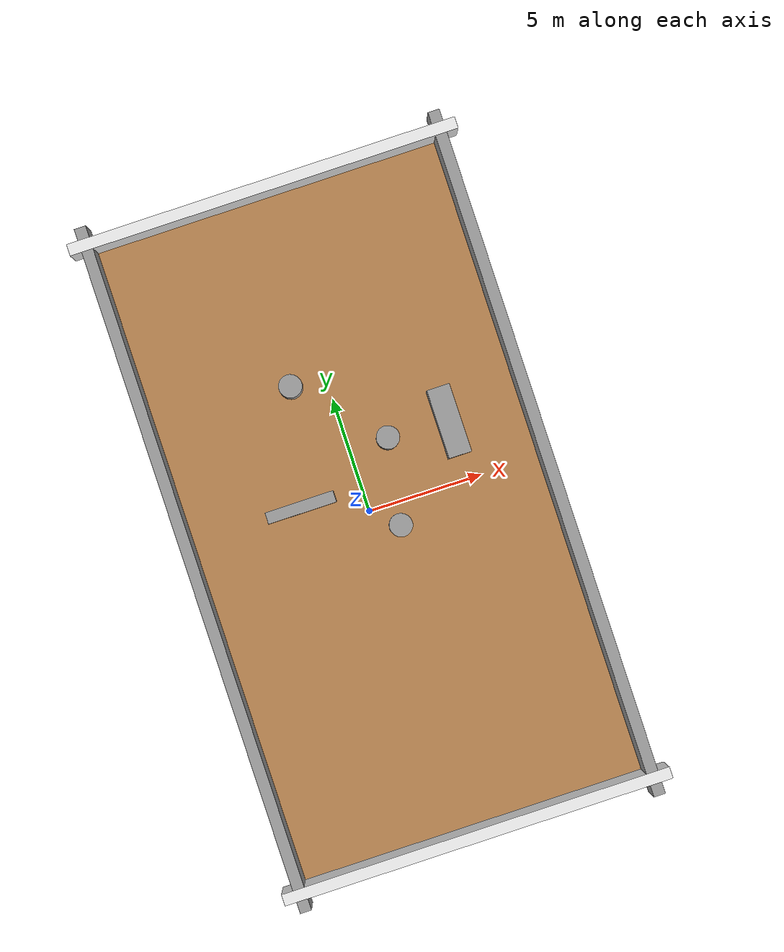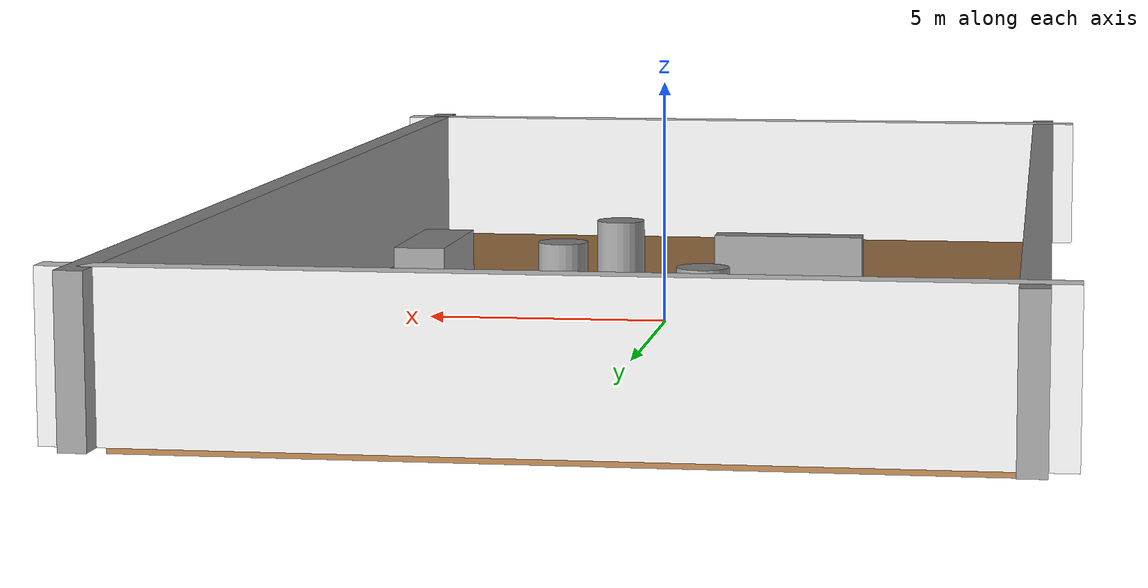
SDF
<sdf version="1.6">
  <model name='base'>
    <model name='unit_cylinder'>
      <pose frame=''>1.6974 2.70537 1 0 -0 0</pose>
      <static>true</static>
      <link name='link'>
        <inertial>
          <mass>1</mass>
          <inertia>
            <ixx>0.145833</ixx>
            <ixy>0</ixy>
            <ixz>0</ixz>
            <iyy>0.145833</iyy>
            <iyz>0</iyz>
            <izz>0.125</izz>
          </inertia>
        </inertial>
        <collision name='collision'>
          <geometry>
            <cylinder>
              <radius>0.5</radius>
              <length>2</length>
            </cylinder>
          </geometry>
          <max_contacts>10</max_contacts>
          <surface>
            <contact>
              <ode/>
            </contact>
            <bounce/>
            <friction>
              <torsional>
                <ode/>
              </torsional>
              <ode/>
            </friction>
          </surface>
        </collision>
        <visual name='visual'>
          <geometry>
            <cylinder>
              <radius>0.5</radius>
              <length>2</length>
            </cylinder>
          </geometry>
          <material>
            <script>
              <name>Gazebo/Grey</name>
              <uri>file://media/materials/scripts/gazebo.material</uri>
            </script>
          </material>
        </visual>
        <self_collide>0</self_collide>
        <kinematic>0</kinematic>
      </link>
    </model>
    <model name='unit_box'>
      <pose frame=''>-2.69557 1.06476 1 0 -0 0</pose>
      <static>true</static>
      <link name='link'>
        <inertial>
          <mass>1</mass>
          <inertia>
            <ixx>0.166667</ixx>
            <ixy>0</ixy>
            <ixz>0</ixz>
            <iyy>0.166667</iyy>
            <iyz>0</iyz>
            <izz>0.166667</izz>
          </inertia>
        </inertial>
        <collision name='collision'>
          <geometry>
            <box>
              <size>3 0.5 2</size>
            </box>
          </geometry>
          <max_contacts>10</max_contacts>
          <surface>
            <contact>
              <ode/>
            </contact>
            <bounce/>
            <friction>
              <torsional>
                <ode/>
              </torsional>
              <ode/>
            </friction>
          </surface>
        </collision>
        <visual name='visual'>
          <geometry>
            <box>
              <size>3 0.5 2</size>
            </box>
          </geometry>
          <material>
            <script>
              <name>Gazebo/Grey</name>
              <uri>file://media/materials/scripts/gazebo.material</uri>
            </script>
          </material>
        </visual>
        <self_collide>0</self_collide>
        <kinematic>0</kinematic>
      </link>
    </model>
    <model name='unit_cylinder_0'>
      <pose frame=''>-1.51424 6.02496 1 0 -0 0</pose>
      <static>true</static>
      <link name='link'>
        <inertial>
          <mass>1</mass>
          <inertia>
            <ixx>0.145833</ixx>
            <ixy>0</ixy>
            <ixz>0</ixz>
            <iyy>0.145833</iyy>
            <iyz>0</iyz>
            <izz>0.125</izz>
          </inertia>
        </inertial>
        <collision name='collision'>
          <geometry>
            <cylinder>
              <radius>0.5</radius>
              <length>2</length>
            </cylinder>
          </geometry>
          <max_contacts>10</max_contacts>
          <surface>
            <contact>
              <ode/>
            </contact>
            <bounce/>
            <friction>
              <torsional>
                <ode/>
              </torsional>
              <ode/>
            </friction>
          </surface>
        </collision>
        <visual name='visual'>
          <geometry>
            <cylinder>
              <radius>0.5</radius>
              <length>2</length>
            </cylinder>
          </geometry>
          <material>
            <script>
              <name>Gazebo/Grey</name>
              <uri>file://media/materials/scripts/gazebo.material</uri>
            </script>
          </material>
        </visual>
        <self_collide>0</self_collide>
        <kinematic>0</kinematic>
      </link>
    </model>
    <model name='unit_cylinder_1'>
      <pose frame=''>1.06564 -0.957164 1 0 -0 0</pose>
      <static>true</static>
      <link name='link'>
        <inertial>
          <mass>1</mass>
          <inertia>
            <ixx>0.145833</ixx>
            <ixy>0</ixy>
            <ixz>0</ixz>
            <iyy>0.145833</iyy>
            <iyz>0</iyz>
            <izz>0.125</izz>
          </inertia>
        </inertial>
        <collision name='collision'>
          <geometry>
            <cylinder>
              <radius>0.5</radius>
              <length>2</length>
            </cylinder>
          </geometry>
          <max_contacts>10</max_contacts>
          <surface>
            <contact>
              <ode/>
            </contact>
            <bounce/>
            <friction>
              <torsional>
                <ode/>
              </torsional>
              <ode/>
            </friction>
          </surface>
        </collision>
        <visual name='visual'>
          <geometry>
            <cylinder>
              <radius>0.5</radius>
              <length>2</length>
            </cylinder>
          </geometry>
          <material>
            <script>
              <name>Gazebo/Grey</name>
              <uri>file://media/materials/scripts/gazebo.material</uri>
            </script>
          </material>
        </visual>
        <self_collide>0</self_collide>
        <kinematic>0</kinematic>
      </link>
    </model>
    <model name='unit_box_0'>
      <pose frame=''>4.35075 2.55387 1 0 -0 0</pose>
      <static>true</static>
      <link name='link'>
        <inertial>
          <mass>1</mass>
          <inertia>
            <ixx>0.166667</ixx>
            <ixy>0</ixy>
            <ixz>0</ixz>
            <iyy>0.166667</iyy>
            <iyz>0</iyz>
            <izz>0.166667</izz>
          </inertia>
        </inertial>
        <collision name='collision'>
          <geometry>
            <box>
              <size>1 3 2</size>
            </box>
          </geometry>
          <max_contacts>10</max_contacts>
          <surface>
            <contact>
              <ode/>
            </contact>
            <bounce/>
            <friction>
              <torsional>
                <ode/>
              </torsional>
              <ode/>
            </friction>
          </surface>
        </collision>
        <visual name='visual'>
          <geometry>
            <box>
              <size>1 3 2</size>
            </box>
          </geometry>
          <material>
            <script>
              <name>Gazebo/Grey</name>
              <uri>file://media/materials/scripts/gazebo.material</uri>
            </script>
          </material>
        </visual>
        <self_collide>0</self_collide>
        <kinematic>0</kinematic>
      </link>
    </model>

    <model name='floor'>
      <pose frame=''>0 0 -0.1 0 -0 0</pose>
      <static>true</static>
      <link name='link'>
        <inertial>
          <mass>1</mass>
          <inertia>
            <ixx>0.166667</ixx>
            <ixy>0</ixy>
            <ixz>0</ixz>
            <iyy>0.166667</iyy>
            <iyz>0</iyz>
            <izz>0.166667</izz>
          </inertia>
        </inertial>
        <collision name='collision'>
          <geometry>
            <box>
              <size>15 28 0.2</size>
            </box>
          </geometry>
          <max_contacts>10</max_contacts>
          <surface>
            <contact>
              <ode/>
            </contact>
            <bounce/>
            <friction>
              <torsional>
                <ode/>
              </torsional>
              <ode/>
            </friction>
          </surface>
        </collision>
        <visual name='visual'>
          <geometry>
            <box>
              <size>15 28 0.2</size>
            </box>
          </geometry>
          <material>
            <script>
              <name>Gazebo/Wood</name>
              <uri>file://media/materials/scripts/gazebo.material</uri>
            </script>
          </material>
        </visual>
        <self_collide>0</self_collide>
        <kinematic>0</kinematic>
      </link>
    </model>
    <model name='wall_0'>
      <pose frame=''>0 14.25 1.5 0 -0 0</pose>
      <static>true</static>
      <link name='link'>
        <inertial>
          <mass>1</mass>
          <inertia>
            <ixx>0.166667</ixx>
            <ixy>0</ixy>
            <ixz>0</ixz>
            <iyy>0.166667</iyy>
            <iyz>0</iyz>
            <izz>0.166667</izz>
          </inertia>
        </inertial>
        <collision name='collision'>
          <geometry>
            <box>
              <size>17 0.5 3</size>
            </box>
          </geometry>
          <max_contacts>10</max_contacts>
          <surface>
            <contact>
              <ode/>
            </contact>
            <bounce/>
            <friction>
              <torsional>
                <ode/>
              </torsional>
              <ode/>
            </friction>
          </surface>
        </collision>
        <visual name='visual'>
          <geometry>
            <box>
              <size>17 0.5 3</size>
            </box>
          </geometry>
          <material>
            <script>
              <name>Gazebo/White</name>
              <uri>file://media/materials/scripts/gazebo.material</uri>
            </script>
          </material>
        </visual>
        <self_collide>0</self_collide>
        <kinematic>0</kinematic>
      </link>
    </model>
    <model name='wall_1'>
      <pose frame=''>0 -14.25 1.5 0 -0 0</pose>
      <static>true</static>
      <link name='link'>
        <inertial>
          <mass>1</mass>
          <inertia>
            <ixx>0.166667</ixx>
            <ixy>0</ixy>
            <ixz>0</ixz>
            <iyy>0.166667</iyy>
            <iyz>0</iyz>
            <izz>0.166667</izz>
          </inertia>
        </inertial>
        <collision name='collision'>
          <geometry>
            <box>
              <size>17 0.5 3</size>
            </box>
          </geometry>
          <max_contacts>10</max_contacts>
          <surface>
            <contact>
              <ode/>
            </contact>
            <bounce/>
            <friction>
              <torsional>
                <ode/>
              </torsional>
              <ode/>
            </friction>
          </surface>
        </collision>
        <visual name='visual'>
          <geometry>
            <box>
              <size>17 0.5 3</size>
            </box>
          </geometry>
          <material>
            <script>
              <name>Gazebo/White</name>
              <uri>file://media/materials/scripts/gazebo.material</uri>
            </script>
          </material>
        </visual>
        <self_collide>0</self_collide>
        <kinematic>0</kinematic>
      </link>
    </model>
    <model name='wall_2'>
      <pose frame=''>7.75 0 1.5 0 -0 0</pose>
      <static>true</static>
      <link name='link'>
        <inertial>
          <mass>1</mass>
          <inertia>
            <ixx>0.166667</ixx>
            <ixy>0</ixy>
            <ixz>0</ixz>
            <iyy>0.166667</iyy>
            <iyz>0</iyz>
            <izz>0.166667</izz>
          </inertia>
        </inertial>
        <collision name='collision'>
          <geometry>
            <box>
              <size>0.5 30 3</size>
            </box>
          </geometry>
          <max_contacts>10</max_contacts>
          <surface>
            <contact>
              <ode/>
            </contact>
            <bounce/>
            <friction>
              <torsional>
                <ode/>
              </torsional>
              <ode/>
            </friction>
          </surface>
        </collision>
        <visual name='visual'>
          <geometry>
            <box>
              <size>0.5 30 3</size>
            </box>
          </geometry>
          <material>
            <script>
              <name>Gazebo/Grey</name>
              <uri>file://media/materials/scripts/gazebo.material</uri>
            </script>
          </material>
        </visual>
        <self_collide>0</self_collide>
        <kinematic>0</kinematic>
      </link>
    </model>
    <model name='wall_3'>
      <pose frame=''>-7.75 0 1.5 0 -0 0</pose>
      <static>true</static>
      <link name='link'>
        <inertial>
          <mass>1</mass>
          <inertia>
            <ixx>0.166667</ixx>
            <ixy>0</ixy>
            <ixz>0</ixz>
            <iyy>0.166667</iyy>
            <iyz>0</iyz>
            <izz>0.166667</izz>
          </inertia>
        </inertial>
        <collision name='collision'>
          <geometry>
            <box>
              <size>0.5 30 3</size>
            </box>
          </geometry>
          <max_contacts>10</max_contacts>
          <surface>
            <contact>
              <ode/>
            </contact>
            <bounce/>
            <friction>
              <torsional>
                <ode/>
              </torsional>
              <ode/>
            </friction>
          </surface>
        </collision>
        <visual name='visual'>
          <geometry>
            <box>
              <size>0.5 30 3</size>
            </box>
          </geometry>
          <material>
            <script>
              <name>Gazebo/Grey</name>
              <uri>file://media/materials/scripts/gazebo.material</uri>
            </script>
          </material>
        </visual>
        <self_collide>0</self_collide>
        <kinematic>0</kinematic>
      </link>
    </model>
  </model>
</sdf>
